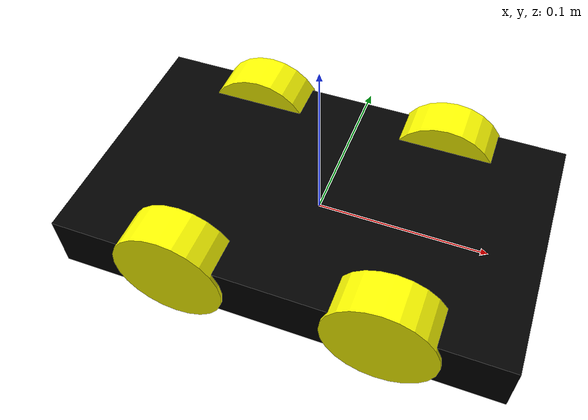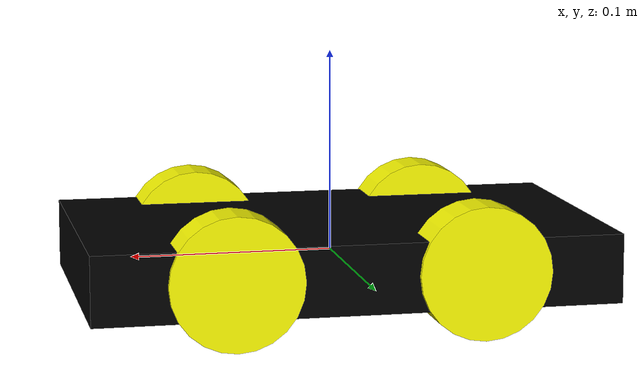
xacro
<?xml version="1.0"?>
<robot xmlns:xacro="http://www.ros.org/wiki/xacro">

    <xacro:include filename="inertial_macros.xacro"/>
    <xacro:include filename="color.xacro"/>

    <!-- X: Red - Forward, Y: Green - Left, Z: Blue - Up-->
    <xacro:property name="chassis_length" value="0.257"/>
    <xacro:property name="chassis_width" value="0.15"/>
    <xacro:property name="chassis_height" value="0.034"/>
    <xacro:property name="chassis_mass" value="0.5"/>

    <xacro:property name="wheel_radius" value="0.0325"/>
    <xacro:property name="wheel_thickness" value="0.025"/>
    <xacro:property name="wheel_mass" value="0.05"/>
    <xacro:property name="wheel_base_offset_x" value="0.1285"/>
    <xacro:property name="wheel_offset_x" value="0.06"/>
    <xacro:property name="wheel_offset_y" value="0.0645"/>
    <xacro:property name="wheel_offset_z" value="0.0175"/>

    <!-- BASE LINK -->
    <link name="base_link"></link>

    <!-- BASE FOOTPRINT LINK -->
    <joint name="base_footprint_joint" type="fixed">
        <parent link="base_link"/>
        <child link="base_footprint"/>
        <origin xyz="0 0 0" rpy="0 0 0"/>
    </joint>

    <link name="base_footprint"></link>

    <!-- CHASSIS LINK -->
    <joint name="chassis_joint" type="fixed">
        <parent link="base_link"/>
        <child link="chassis"/>
        <origin xyz="${-wheel_base_offset_x} 0 ${-wheel_offset_z}"/>
    </joint>

    <link name="chassis">
        <visual>
            <origin xyz="${chassis_length/2} 0 ${chassis_height/2}"/>
            <geometry>
                <box size="${chassis_length} ${chassis_width} ${chassis_height}"/>
            </geometry>
            <material name="black"/>
        </visual>
        <collision>
            <origin xyz="${chassis_length/2} 0 ${chassis_height/2}"/>
            <geometry>
                <box size="${chassis_length} ${chassis_width} ${chassis_height}"/>
            </geometry>
        </collision>
        <xacro:inertial_box mass="${chassis_mass}" x="${chassis_length}" y="${chassis_width}" z="${chassis_height}">
            <origin xyz="${chassis_length/2} 0 ${chassis_height/2}" rpy="0 0 0"/>
        </xacro:inertial_box>
    </link>

    <gazebo reference="chassis">
        <material>Gazebo/Black</material>
    </gazebo>

    <!-- FRONT LEFT WHEEL LINK -->
    <joint name="front_left_wheel_joint" type="continuous">
        <parent link="base_link"/>
        <child link="front_left_wheel"/>
        <origin xyz="${wheel_offset_x} ${wheel_offset_y} 0" rpy="-${pi/2} 0 0" />
        <axis xyz="0 0 1"/>
    </joint>

    <link name="front_left_wheel">
        <visual>
            <geometry>
                <cylinder radius="${wheel_radius}" length="${wheel_thickness}"/>
            </geometry>
            <material name="yellow"/>
        </visual>
        <collision>
            <geometry>
                <sphere radius="${wheel_radius}"/>
            </geometry>
        </collision>
        <xacro:inertial_cylinder mass="${wheel_mass}" length="${wheel_thickness}" radius="${wheel_radius}">
            <origin xyz="0 0 0" rpy="0 0 0"/>
        </xacro:inertial_cylinder>
    </link>

    <gazebo reference="front_left_wheel">
        <material>Gazebo/Yellow</material>
    </gazebo>

    <!-- FRONT RIGHT WHEEL LINK -->
    <joint name="front_right_wheel_joint" type="continuous">
        <parent link="base_link"/>
        <child link="front_right_wheel"/>
        <origin xyz="${wheel_offset_x} ${-wheel_offset_y} 0" rpy="${pi/2} 0 0" />
        <axis xyz="0 0 -1"/>
    </joint>

    <link name="front_right_wheel">
        <visual>
            <geometry>
                <cylinder radius="${wheel_radius}" length="${wheel_thickness}"/>
            </geometry>
            <material name="yellow"/>
        </visual>
        <collision>
            <geometry>
                <sphere radius="${wheel_radius}"/>
            </geometry>
        </collision>
        <xacro:inertial_cylinder mass="${wheel_mass}" length="${wheel_thickness}" radius="${wheel_radius}">
            <origin xyz="0 0 0" rpy="0 0 0"/>
        </xacro:inertial_cylinder>
    </link>

    <gazebo reference="front_right_wheel">
        <material>Gazebo/Yellow</material>
    </gazebo>

    <!-- REAR LEFT WHEEL LINK -->
    <joint name="rear_left_wheel_joint" type="continuous">
        <parent link="base_link"/>
        <child link="rear_left_wheel"/>
        <origin xyz="${-wheel_offset_x} ${wheel_offset_y} 0" rpy="-${pi/2} 0 0" />
        <axis xyz="0 0 1"/>
    </joint>

    <link name="rear_left_wheel">
        <visual>
            <geometry>
                <cylinder radius="${wheel_radius}" length="${wheel_thickness}"/>
            </geometry>
            <material name="yellow"/>
        </visual>
        <collision>
            <geometry>
                <sphere radius="${wheel_radius}"/>
            </geometry>
        </collision>
        <xacro:inertial_cylinder mass="${wheel_mass}" length="${wheel_thickness}" radius="${wheel_radius}">
            <origin xyz="0 0 0" rpy="0 0 0"/>
        </xacro:inertial_cylinder>
    </link>

    <gazebo reference="rear_left_wheel">
        <material>Gazebo/Yellow</material>
    </gazebo>

    <!-- REAR RIGHT WHEEL LINK -->
    <joint name="rear_right_wheel_joint" type="continuous">
        <parent link="base_link"/>
        <child link="rear_right_wheel"/>
        <origin xyz="${-wheel_offset_x} ${-wheel_offset_y} 0" rpy="${pi/2} 0 0" />
        <axis xyz="0 0 -1"/>
    </joint>

    <link name="rear_right_wheel">
        <visual>
            <geometry>
                <cylinder radius="${wheel_radius}" length="${wheel_thickness}"/>
            </geometry>
            <material name="yellow"/>
        </visual>
        <collision>
            <geometry>
                <sphere radius="${wheel_radius}"/>
            </geometry>
        </collision>
        <xacro:inertial_cylinder mass="${wheel_mass}" length="${wheel_thickness}" radius="${wheel_radius}">
            <origin xyz="0 0 0" rpy="0 0 0"/>
        </xacro:inertial_cylinder>
    </link>

    <gazebo reference="rear_right_wheel">
        <material>Gazebo/Yellow</material>
    </gazebo>

</robot>

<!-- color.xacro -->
<robot xmlns:xacro="http://www.ros.org/wiki/xacro">

    <material name="white">
        <color rgba="1 1 1 1" />
    </material>

    <material name="orange">
        <color rgba="1 0.3 0.1 1"/>
    </material>

    <material name="blue">
        <color rgba="0.2 0.2 1 1"/>
    </material>

    <material name="black">
        <color rgba="0 0 0 1"/>
    </material>

    <material name="red">
        <color rgba="1 0 0 1"/>
    </material>

    <material name="yellow">
        <color rgba="1 1 0 1"/>
    </material>

</robot>
